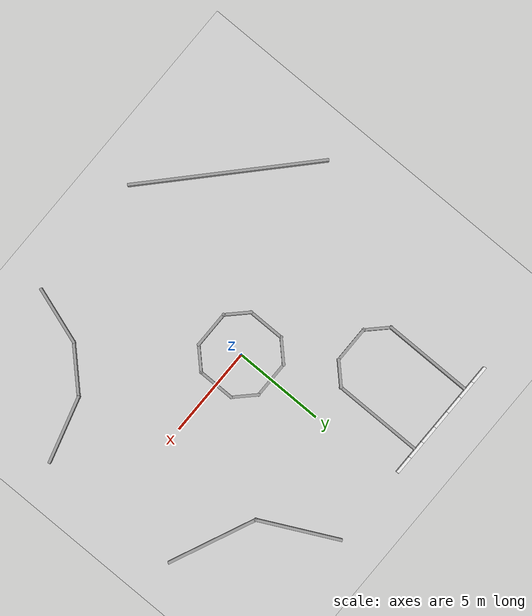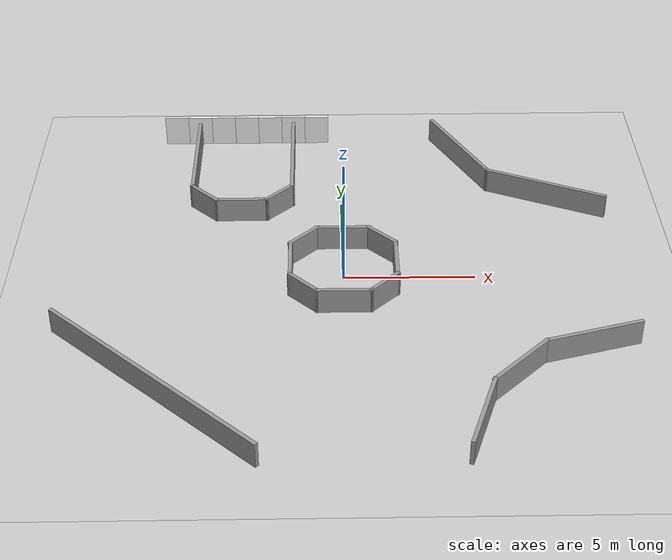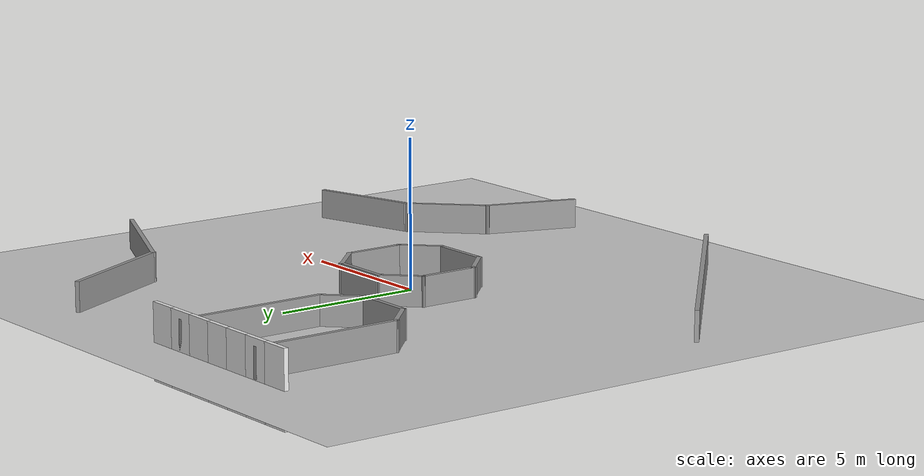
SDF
<sdf version="1.7">
 <world name="default">
  <model name="ground_plane">
   <static>1</static>
   <link name="link">
    <collision name="collision">
     <geometry><plane><normal>0 0 1</normal><size>100 100</size></plane></geometry>
     <surface>
      <contact><collide_bitmask>65535</collide_bitmask></contact>
      <friction><ode><mu>100</mu><mu2>50</mu2></ode></friction>
     </surface>
    </collision>
    <visual name="visual">
     <cast_shadows>0</cast_shadows>
     <geometry><plane><normal>0 0 1</normal><size>100 100</size></plane></geometry>
     <material>
      <script><uri>file://media/materials/scripts/gazebo.material</uri><name>Gazebo/Grey</name></script>
     </material>
    </visual>
   </link>
  </model>
  <model name="wall_left_04">
   <link name="Wall_10">
    <inertial>
     <mass>1</mass>
     <inertia><ixx>1</ixx><ixy>0</ixy><ixz>0</ixz><iyy>1</iyy><iyz>0</iyz><izz>1</izz></inertia>
    </inertial>
    <visual name="Wall_10_Visual_0">
     <geometry><box><size>1 0.15 2.5</size></box></geometry>
     <material>
      <script>
       <uri>model://wall/materials/scripts</uri>
       <uri>model://wall/materials/textures</uri>
       <name>wall_white</name>
      </script>
      <shader type="pixel"><normal_map>__default__</normal_map></shader>
      <ambient>1 1 1 1</ambient>
      <diffuse>1 1 1 1</diffuse>
      <specular>0 0 0 1</specular>
      <emissive>0 0 0 1</emissive>
     </material>
     <meta><layer>0</layer></meta>
    </visual>
    <collision name="Wall_10_Collision_0">
     <geometry><box><size>1 0.15 2.5</size></box></geometry>
     <surface>
      <friction>
       <ode><mu>1</mu><mu2>1</mu2><fdir1>0 0 0</fdir1><slip1>0</slip1><slip2>0</slip2></ode>
       <torsional>
        <coefficient>1</coefficient>
        <patch_radius>0</patch_radius>
        <surface_radius>0</surface_radius>
        <use_patch_radius>1</use_patch_radius>
        <ode><slip>0</slip></ode>
       </torsional>
      </friction>
      <bounce><restitution_coefficient>0</restitution_coefficient><threshold>1e+06</threshold></bounce>
      <contact>
       <collide_without_contact>0</collide_without_contact>
       <collide_without_contact_bitmask>1</collide_without_contact_bitmask>
       <collide_bitmask>1</collide_bitmask>
       <ode>
        <soft_cfm>0</soft_cfm>
        <soft_erp>0.2</soft_erp>
        <kp>1e+13</kp>
        <kd>1</kd>
        <max_vel>0.01</max_vel>
        <min_depth>0</min_depth>
       </ode>
       <bullet>
        <split_impulse>1</split_impulse>
        <split_impulse_penetration_threshold>-0.01</split_impulse_penetration_threshold>
        <soft_cfm>0</soft_cfm>
        <soft_erp>0.2</soft_erp>
        <kp>1e+13</kp>
        <kd>1</kd>
       </bullet>
      </contact>
     </surface>
    </collision>
   </link>
   <static>1</static>
   <pose>-7 10 0 0 -0 0</pose>
  </model>
  <model name="wall_left_05">
   <link name="Wall_10">
    <inertial>
     <mass>1</mass>
     <inertia><ixx>1</ixx><ixy>0</ixy><ixz>0</ixz><iyy>1</iyy><iyz>0</iyz><izz>1</izz></inertia>
    </inertial>
    <visual name="Wall_10_Visual_0">
     <geometry><box><size>1 0.15 2.5</size></box></geometry>
     <material>
      <script>
       <uri>model://wall/materials/scripts</uri>
       <uri>model://wall/materials/textures</uri>
       <name>wall_white</name>
      </script>
      <shader type="pixel"><normal_map>__default__</normal_map></shader>
      <ambient>1 1 1 1</ambient>
      <diffuse>1 1 1 1</diffuse>
      <specular>0 0 0 1</specular>
      <emissive>0 0 0 1</emissive>
     </material>
     <meta><layer>0</layer></meta>
    </visual>
    <collision name="Wall_10_Collision_0">
     <geometry><box><size>1 0.15 2.5</size></box></geometry>
     <surface>
      <friction>
       <ode><mu>1</mu><mu2>1</mu2><fdir1>0 0 0</fdir1><slip1>0</slip1><slip2>0</slip2></ode>
       <torsional>
        <coefficient>1</coefficient>
        <patch_radius>0</patch_radius>
        <surface_radius>0</surface_radius>
        <use_patch_radius>1</use_patch_radius>
        <ode><slip>0</slip></ode>
       </torsional>
      </friction>
      <bounce><restitution_coefficient>0</restitution_coefficient><threshold>1e+06</threshold></bounce>
      <contact>
       <collide_without_contact>0</collide_without_contact>
       <collide_without_contact_bitmask>1</collide_without_contact_bitmask>
       <collide_bitmask>1</collide_bitmask>
       <ode>
        <soft_cfm>0</soft_cfm>
        <soft_erp>0.2</soft_erp>
        <kp>1e+13</kp>
        <kd>1</kd>
        <max_vel>0.01</max_vel>
        <min_depth>0</min_depth>
       </ode>
       <bullet>
        <split_impulse>1</split_impulse>
        <split_impulse_penetration_threshold>-0.01</split_impulse_penetration_threshold>
        <soft_cfm>0</soft_cfm>
        <soft_erp>0.2</soft_erp>
        <kp>1e+13</kp>
        <kd>1</kd>
       </bullet>
      </contact>
     </surface>
    </collision>
   </link>
   <static>1</static>
   <pose>-6 10 0 0 -0 0</pose>
  </model>
  <model name="wall_left_06">
   <link name="Wall_10">
    <inertial>
     <mass>1</mass>
     <inertia><ixx>1</ixx><ixy>0</ixy><ixz>0</ixz><iyy>1</iyy><iyz>0</iyz><izz>1</izz></inertia>
    </inertial>
    <visual name="Wall_10_Visual_0">
     <geometry><box><size>1 0.15 2.5</size></box></geometry>
     <material>
      <script>
       <uri>model://wall/materials/scripts</uri>
       <uri>model://wall/materials/textures</uri>
       <name>wall_white</name>
      </script>
      <shader type="pixel"><normal_map>__default__</normal_map></shader>
      <ambient>1 1 1 1</ambient>
      <diffuse>1 1 1 1</diffuse>
      <specular>0 0 0 1</specular>
      <emissive>0 0 0 1</emissive>
     </material>
     <meta><layer>0</layer></meta>
    </visual>
    <collision name="Wall_10_Collision_0">
     <geometry><box><size>1 0.15 2.5</size></box></geometry>
     <surface>
      <friction>
       <ode><mu>1</mu><mu2>1</mu2><fdir1>0 0 0</fdir1><slip1>0</slip1><slip2>0</slip2></ode>
       <torsional>
        <coefficient>1</coefficient>
        <patch_radius>0</patch_radius>
        <surface_radius>0</surface_radius>
        <use_patch_radius>1</use_patch_radius>
        <ode><slip>0</slip></ode>
       </torsional>
      </friction>
      <bounce><restitution_coefficient>0</restitution_coefficient><threshold>1e+06</threshold></bounce>
      <contact>
       <collide_without_contact>0</collide_without_contact>
       <collide_without_contact_bitmask>1</collide_without_contact_bitmask>
       <collide_bitmask>1</collide_bitmask>
       <ode>
        <soft_cfm>0</soft_cfm>
        <soft_erp>0.2</soft_erp>
        <kp>1e+13</kp>
        <kd>1</kd>
        <max_vel>0.01</max_vel>
        <min_depth>0</min_depth>
       </ode>
       <bullet>
        <split_impulse>1</split_impulse>
        <split_impulse_penetration_threshold>-0.01</split_impulse_penetration_threshold>
        <soft_cfm>0</soft_cfm>
        <soft_erp>0.2</soft_erp>
        <kp>1e+13</kp>
        <kd>1</kd>
       </bullet>
      </contact>
     </surface>
    </collision>
   </link>
   <static>1</static>
   <pose>-5 10 0 0 -0 0</pose>
  </model>
  <model name="wall_left_07">
   <link name="Wall_10">
    <inertial>
     <mass>1</mass>
     <inertia><ixx>1</ixx><ixy>0</ixy><ixz>0</ixz><iyy>1</iyy><iyz>0</iyz><izz>1</izz></inertia>
    </inertial>
    <visual name="Wall_10_Visual_0">
     <geometry><box><size>1 0.15 2.5</size></box></geometry>
     <material>
      <script>
       <uri>model://wall/materials/scripts</uri>
       <uri>model://wall/materials/textures</uri>
       <name>wall_white</name>
      </script>
      <shader type="pixel"><normal_map>__default__</normal_map></shader>
      <ambient>1 1 1 1</ambient>
      <diffuse>1 1 1 1</diffuse>
      <specular>0 0 0 1</specular>
      <emissive>0 0 0 1</emissive>
     </material>
     <meta><layer>0</layer></meta>
    </visual>
    <collision name="Wall_10_Collision_0">
     <geometry><box><size>1 0.15 2.5</size></box></geometry>
     <surface>
      <friction>
       <ode><mu>1</mu><mu2>1</mu2><fdir1>0 0 0</fdir1><slip1>0</slip1><slip2>0</slip2></ode>
       <torsional>
        <coefficient>1</coefficient>
        <patch_radius>0</patch_radius>
        <surface_radius>0</surface_radius>
        <use_patch_radius>1</use_patch_radius>
        <ode><slip>0</slip></ode>
       </torsional>
      </friction>
      <bounce><restitution_coefficient>0</restitution_coefficient><threshold>1e+06</threshold></bounce>
      <contact>
       <collide_without_contact>0</collide_without_contact>
       <collide_without_contact_bitmask>1</collide_without_contact_bitmask>
       <collide_bitmask>1</collide_bitmask>
       <ode>
        <soft_cfm>0</soft_cfm>
        <soft_erp>0.2</soft_erp>
        <kp>1e+13</kp>
        <kd>1</kd>
        <max_vel>0.01</max_vel>
        <min_depth>0</min_depth>
       </ode>
       <bullet>
        <split_impulse>1</split_impulse>
        <split_impulse_penetration_threshold>-0.01</split_impulse_penetration_threshold>
        <soft_cfm>0</soft_cfm>
        <soft_erp>0.2</soft_erp>
        <kp>1e+13</kp>
        <kd>1</kd>
       </bullet>
      </contact>
     </surface>
    </collision>
   </link>
   <static>1</static>
   <pose>-4 10 0 0 -0 0</pose>
  </model>
  <model name="wall_left_08">
   <link name="Wall_10">
    <inertial>
     <mass>1</mass>
     <inertia><ixx>1</ixx><ixy>0</ixy><ixz>0</ixz><iyy>1</iyy><iyz>0</iyz><izz>1</izz></inertia>
    </inertial>
    <visual name="Wall_10_Visual_0">
     <geometry><box><size>1 0.15 2.5</size></box></geometry>
     <material>
      <script>
       <uri>model://wall/materials/scripts</uri>
       <uri>model://wall/materials/textures</uri>
       <name>wall_white</name>
      </script>
      <shader type="pixel"><normal_map>__default__</normal_map></shader>
      <ambient>1 1 1 1</ambient>
      <diffuse>1 1 1 1</diffuse>
      <specular>0 0 0 1</specular>
      <emissive>0 0 0 1</emissive>
     </material>
     <meta><layer>0</layer></meta>
    </visual>
    <collision name="Wall_10_Collision_0">
     <geometry><box><size>1 0.15 2.5</size></box></geometry>
     <surface>
      <friction>
       <ode><mu>1</mu><mu2>1</mu2><fdir1>0 0 0</fdir1><slip1>0</slip1><slip2>0</slip2></ode>
       <torsional>
        <coefficient>1</coefficient>
        <patch_radius>0</patch_radius>
        <surface_radius>0</surface_radius>
        <use_patch_radius>1</use_patch_radius>
        <ode><slip>0</slip></ode>
       </torsional>
      </friction>
      <bounce><restitution_coefficient>0</restitution_coefficient><threshold>1e+06</threshold></bounce>
      <contact>
       <collide_without_contact>0</collide_without_contact>
       <collide_without_contact_bitmask>1</collide_without_contact_bitmask>
       <collide_bitmask>1</collide_bitmask>
       <ode>
        <soft_cfm>0</soft_cfm>
        <soft_erp>0.2</soft_erp>
        <kp>1e+13</kp>
        <kd>1</kd>
        <max_vel>0.01</max_vel>
        <min_depth>0</min_depth>
       </ode>
       <bullet>
        <split_impulse>1</split_impulse>
        <split_impulse_penetration_threshold>-0.01</split_impulse_penetration_threshold>
        <soft_cfm>0</soft_cfm>
        <soft_erp>0.2</soft_erp>
        <kp>1e+13</kp>
        <kd>1</kd>
       </bullet>
      </contact>
     </surface>
    </collision>
   </link>
   <static>1</static>
   <pose>-3 10 0 0 -0 0</pose>
  </model>
  <model name="wall_left_09">
   <link name="Wall_10">
    <inertial>
     <mass>1</mass>
     <inertia><ixx>1</ixx><ixy>0</ixy><ixz>0</ixz><iyy>1</iyy><iyz>0</iyz><izz>1</izz></inertia>
    </inertial>
    <visual name="Wall_10_Visual_0">
     <geometry><box><size>1 0.15 2.5</size></box></geometry>
     <material>
      <script>
       <uri>model://wall/materials/scripts</uri>
       <uri>model://wall/materials/textures</uri>
       <name>wall_white</name>
      </script>
      <shader type="pixel"><normal_map>__default__</normal_map></shader>
      <ambient>1 1 1 1</ambient>
      <diffuse>1 1 1 1</diffuse>
      <specular>0 0 0 1</specular>
      <emissive>0 0 0 1</emissive>
     </material>
     <meta><layer>0</layer></meta>
    </visual>
    <collision name="Wall_10_Collision_0">
     <geometry><box><size>1 0.15 2.5</size></box></geometry>
     <surface>
      <friction>
       <ode><mu>1</mu><mu2>1</mu2><fdir1>0 0 0</fdir1><slip1>0</slip1><slip2>0</slip2></ode>
       <torsional>
        <coefficient>1</coefficient>
        <patch_radius>0</patch_radius>
        <surface_radius>0</surface_radius>
        <use_patch_radius>1</use_patch_radius>
        <ode><slip>0</slip></ode>
       </torsional>
      </friction>
      <bounce><restitution_coefficient>0</restitution_coefficient><threshold>1e+06</threshold></bounce>
      <contact>
       <collide_without_contact>0</collide_without_contact>
       <collide_without_contact_bitmask>1</collide_without_contact_bitmask>
       <collide_bitmask>1</collide_bitmask>
       <ode>
        <soft_cfm>0</soft_cfm>
        <soft_erp>0.2</soft_erp>
        <kp>1e+13</kp>
        <kd>1</kd>
        <max_vel>0.01</max_vel>
        <min_depth>0</min_depth>
       </ode>
       <bullet>
        <split_impulse>1</split_impulse>
        <split_impulse_penetration_threshold>-0.01</split_impulse_penetration_threshold>
        <soft_cfm>0</soft_cfm>
        <soft_erp>0.2</soft_erp>
        <kp>1e+13</kp>
        <kd>1</kd>
       </bullet>
      </contact>
     </surface>
    </collision>
   </link>
   <static>1</static>
   <pose>-2 10 0 0 -0 0</pose>
  </model>
  <model name="wall_left_10">
   <link name="Wall_10">
    <inertial>
     <mass>1</mass>
     <inertia><ixx>1</ixx><ixy>0</ixy><ixz>0</ixz><iyy>1</iyy><iyz>0</iyz><izz>1</izz></inertia>
    </inertial>
    <visual name="Wall_10_Visual_0">
     <geometry><box><size>1 0.15 2.5</size></box></geometry>
     <material>
      <script>
       <uri>model://wall/materials/scripts</uri>
       <uri>model://wall/materials/textures</uri>
       <name>wall_white</name>
      </script>
      <shader type="pixel"><normal_map>__default__</normal_map></shader>
      <ambient>1 1 1 1</ambient>
      <diffuse>1 1 1 1</diffuse>
      <specular>0 0 0 1</specular>
      <emissive>0 0 0 1</emissive>
     </material>
     <meta><layer>0</layer></meta>
    </visual>
    <collision name="Wall_10_Collision_0">
     <geometry><box><size>1 0.15 2.5</size></box></geometry>
     <surface>
      <friction>
       <ode><mu>1</mu><mu2>1</mu2><fdir1>0 0 0</fdir1><slip1>0</slip1><slip2>0</slip2></ode>
       <torsional>
        <coefficient>1</coefficient>
        <patch_radius>0</patch_radius>
        <surface_radius>0</surface_radius>
        <use_patch_radius>1</use_patch_radius>
        <ode><slip>0</slip></ode>
       </torsional>
      </friction>
      <bounce><restitution_coefficient>0</restitution_coefficient><threshold>1e+06</threshold></bounce>
      <contact>
       <collide_without_contact>0</collide_without_contact>
       <collide_without_contact_bitmask>1</collide_without_contact_bitmask>
       <collide_bitmask>1</collide_bitmask>
       <ode>
        <soft_cfm>0</soft_cfm>
        <soft_erp>0.2</soft_erp>
        <kp>1e+13</kp>
        <kd>1</kd>
        <max_vel>0.01</max_vel>
        <min_depth>0</min_depth>
       </ode>
       <bullet>
        <split_impulse>1</split_impulse>
        <split_impulse_penetration_threshold>-0.01</split_impulse_penetration_threshold>
        <soft_cfm>0</soft_cfm>
        <soft_erp>0.2</soft_erp>
        <kp>1e+13</kp>
        <kd>1</kd>
       </bullet>
      </contact>
     </surface>
    </collision>
   </link>
   <static>1</static>
   <pose>-1 10 0 0 -0 0</pose>
  </model>
  <model name="map1">
   <pose>-0.003503 -0.00269 0 0 -0 0</pose>
   <link name="Wall_0">
    <collision name="Wall_0_Collision">
     <geometry><box><size>5.15 0.15 1</size></box></geometry>
     <pose>0 0 0.5 0 -0 0</pose>
    </collision>
    <visual name="Wall_0_Visual">
     <pose>0 0 0.5 0 -0 0</pose>
     <geometry><box><size>5.15 0.15 1</size></box></geometry>
     <material>
      <script><uri>file://media/materials/scripts/gazebo.material</uri><name>Gazebo/Grey</name></script>
      <ambient>1 1 1 1</ambient>
     </material>
     <meta><layer>0</layer></meta>
    </visual>
    <pose>-5.9965 7.50269 0 0 -0 -1.5708</pose>
   </link>
   <link name="Wall_2">
    <collision name="Wall_2_Collision">
     <geometry><box><size>1.56421 0.15 1</size></box></geometry>
     <pose>0 0 0.5 0 -0 0</pose>
    </collision>
    <visual name="Wall_2_Visual">
     <pose>0 0 0.5 0 -0 0</pose>
     <geometry><box><size>1.56421 0.15 1</size></box></geometry>
     <material>
      <script><uri>file://media/materials/scripts/gazebo.material</uri><name>Gazebo/Grey</name></script>
      <ambient>1 1 1 1</ambient>
     </material>
     <meta><layer>0</layer></meta>
    </visual>
    <pose>-5.4965 4.50269 0 0 -0 -0.785398</pose>
   </link>
   <link name="Wall_26">
    <collision name="Wall_26_Collision">
     <geometry><box><size>2.15 0.15 1</size></box></geometry>
     <pose>0 0 0.5 0 -0 0</pose>
    </collision>
    <visual name="Wall_26_Visual">
     <pose>0 0 0.5 0 -0 0</pose>
     <geometry><box><size>2.15 0.15 1</size></box></geometry>
     <material>
      <script><uri>file://media/materials/scripts/gazebo.material</uri><name>Gazebo/Grey</name></script>
      <ambient>1 1 1 1</ambient>
     </material>
     <meta><layer>0</layer></meta>
    </visual>
    <pose>-1.9965 0.00269 0 0 -0 1.5708</pose>
   </link>
   <link name="Wall_27">
    <collision name="Wall_27_Collision">
     <geometry><box><size>1.56421 0.15 1</size></box></geometry>
     <pose>0 0 0.5 0 -0 0</pose>
    </collision>
    <visual name="Wall_27_Visual">
     <pose>0 0 0.5 0 -0 0</pose>
     <geometry><box><size>1.56421 0.15 1</size></box></geometry>
     <material>
      <script><uri>file://media/materials/scripts/gazebo.material</uri><name>Gazebo/Grey</name></script>
      <ambient>1 1 1 1</ambient>
     </material>
     <meta><layer>0</layer></meta>
    </visual>
    <pose>-1.4965 1.50269 0 0 -0 0.785398</pose>
   </link>
   <link name="Wall_28">
    <collision name="Wall_28_Collision">
     <geometry><box><size>2.15 0.15 1</size></box></geometry>
     <pose>0 0 0.5 0 -0 0</pose>
    </collision>
    <visual name="Wall_28_Visual">
     <pose>0 0 0.5 0 -0 0</pose>
     <geometry><box><size>2.15 0.15 1</size></box></geometry>
     <material>
      <script><uri>file://media/materials/scripts/gazebo.material</uri><name>Gazebo/Grey</name></script>
      <ambient>1 1 1 1</ambient>
     </material>
     <meta><layer>0</layer></meta>
    </visual>
    <pose>0.003503 2.00269 0 0 -0 0</pose>
   </link>
   <link name="Wall_29">
    <collision name="Wall_29_Collision">
     <geometry><box><size>1.56421 0.15 1</size></box></geometry>
     <pose>0 0 0.5 0 -0 0</pose>
    </collision>
    <visual name="Wall_29_Visual">
     <pose>0 0 0.5 0 -0 0</pose>
     <geometry><box><size>1.56421 0.15 1</size></box></geometry>
     <material>
      <script><uri>file://media/materials/scripts/gazebo.material</uri><name>Gazebo/Grey</name></script>
      <ambient>1 1 1 1</ambient>
     </material>
     <meta><layer>0</layer></meta>
    </visual>
    <pose>1.5035 1.50269 0 0 -0 -0.785398</pose>
   </link>
   <link name="Wall_3">
    <collision name="Wall_3_Collision">
     <geometry><box><size>2.15 0.15 1</size></box></geometry>
     <pose>0 0 0.5 0 -0 0</pose>
    </collision>
    <visual name="Wall_3_Visual">
     <pose>0 0 0.5 0 -0 0</pose>
     <geometry><box><size>2.15 0.15 1</size></box></geometry>
     <material>
      <script><uri>file://media/materials/scripts/gazebo.material</uri><name>Gazebo/Grey</name></script>
      <ambient>1 1 1 1</ambient>
     </material>
     <meta><layer>0</layer></meta>
    </visual>
    <pose>-3.9965 4.00269 0 0 -0 0</pose>
   </link>
   <link name="Wall_30">
    <collision name="Wall_30_Collision">
     <geometry><box><size>2.15 0.15 1</size></box></geometry>
     <pose>0 0 0.5 0 -0 0</pose>
    </collision>
    <visual name="Wall_30_Visual">
     <pose>0 0 0.5 0 -0 0</pose>
     <geometry><box><size>2.15 0.15 1</size></box></geometry>
     <material>
      <script><uri>file://media/materials/scripts/gazebo.material</uri><name>Gazebo/Grey</name></script>
      <ambient>1 1 1 1</ambient>
     </material>
     <meta><layer>0</layer></meta>
    </visual>
    <pose>2.0035 0.00269 0 0 -0 -1.5708</pose>
   </link>
   <link name="Wall_31">
    <collision name="Wall_31_Collision">
     <geometry><box><size>1.56421 0.15 1</size></box></geometry>
     <pose>0 0 0.5 0 -0 0</pose>
    </collision>
    <visual name="Wall_31_Visual">
     <pose>0 0 0.5 0 -0 0</pose>
     <geometry><box><size>1.56421 0.15 1</size></box></geometry>
     <material>
      <script><uri>file://media/materials/scripts/gazebo.material</uri><name>Gazebo/Grey</name></script>
      <ambient>1 1 1 1</ambient>
     </material>
     <meta><layer>0</layer></meta>
    </visual>
    <pose>1.5035 -1.49731 0 0 -0 -2.35619</pose>
   </link>
   <link name="Wall_32">
    <collision name="Wall_32_Collision">
     <geometry><box><size>2.15 0.15 1</size></box></geometry>
     <pose>0 0 0.5 0 -0 0</pose>
    </collision>
    <visual name="Wall_32_Visual">
     <pose>0 0 0.5 0 -0 0</pose>
     <geometry><box><size>2.15 0.15 1</size></box></geometry>
     <material>
      <script><uri>file://media/materials/scripts/gazebo.material</uri><name>Gazebo/Grey</name></script>
      <ambient>1 1 1 1</ambient>
     </material>
     <meta><layer>0</layer></meta>
    </visual>
    <pose>0.003503 -1.99731 0 0 -0 3.14159</pose>
   </link>
   <link name="Wall_33">
    <collision name="Wall_33_Collision">
     <geometry><box><size>1.56421 0.15 1</size></box></geometry>
     <pose>0 0 0.5 0 -0 0</pose>
    </collision>
    <visual name="Wall_33_Visual">
     <pose>0 0 0.5 0 -0 0</pose>
     <geometry><box><size>1.56421 0.15 1</size></box></geometry>
     <material>
      <script><uri>file://media/materials/scripts/gazebo.material</uri><name>Gazebo/Grey</name></script>
      <ambient>1 1 1 1</ambient>
     </material>
     <meta><layer>0</layer></meta>
    </visual>
    <pose>-1.4965 -1.49731 0 0 -0 2.35619</pose>
   </link>
   <link name="Wall_35">
    <collision name="Wall_35_Collision">
     <geometry><box><size>3.31228 0.15 1</size></box></geometry>
     <pose>0 0 0.5 0 -0 0</pose>
    </collision>
    <visual name="Wall_35_Visual">
     <pose>0 0 0.5 0 -0 0</pose>
     <geometry><box><size>3.31228 0.15 1</size></box></geometry>
     <material>
      <script><uri>file://media/materials/scripts/gazebo.material</uri><name>Gazebo/Grey</name></script>
      <ambient>1 1 1 1</ambient>
     </material>
     <meta><layer>0</layer></meta>
    </visual>
    <pose>4.5035 -8.49731 0 0 -0 1.24905</pose>
   </link>
   <link name="Wall_36">
    <collision name="Wall_36_Collision">
     <geometry><box><size>2.97843 0.15 1</size></box></geometry>
     <pose>0 0 0.5 0 -0 0</pose>
    </collision>
    <visual name="Wall_36_Visual">
     <pose>0 0 0.5 0 -0 0</pose>
     <geometry><box><size>2.97843 0.15 1</size></box></geometry>
     <material>
      <script><uri>file://media/materials/scripts/gazebo.material</uri><name>Gazebo/Grey</name></script>
      <ambient>1 1 1 1</ambient>
     </material>
     <meta><layer>0</layer></meta>
    </visual>
    <pose>6.0035 -5.99731 0 0 -0 0.785398</pose>
   </link>
   <link name="Wall_37">
    <collision name="Wall_37_Collision">
     <geometry><box><size>3.79006 0.15 1</size></box></geometry>
     <pose>0 0 0.5 0 -0 0</pose>
    </collision>
    <visual name="Wall_37_Visual">
     <pose>0 0 0.5 0 -0 0</pose>
     <geometry><box><size>3.79006 0.15 1</size></box></geometry>
     <material>
      <script><uri>file://media/materials/scripts/gazebo.material</uri><name>Gazebo/Grey</name></script>
      <ambient>1 1 1 1</ambient>
     </material>
     <meta><layer>0</layer></meta>
    </visual>
    <pose>8.7535 -4.49731 0 0 -0 0.2783</pose>
   </link>
   <link name="Wall_39">
    <collision name="Wall_39_Collision">
     <geometry><box><size>10.4091 0.15 1</size></box></geometry>
     <pose>0 0 0.5 0 -0 0</pose>
    </collision>
    <visual name="Wall_39_Visual">
     <pose>0 0 0.5 0 -0 0</pose>
     <geometry><box><size>10.4091 0.15 1</size></box></geometry>
     <material>
      <script><uri>file://media/materials/scripts/gazebo.material</uri><name>Gazebo/Grey</name></script>
      <ambient>1 1 1 1</ambient>
     </material>
     <meta><layer>0</layer></meta>
    </visual>
    <pose>-6.7465 -6.49731 0 0 -0 2.39066</pose>
   </link>
   <link name="Wall_4">
    <collision name="Wall_4_Collision">
     <geometry><box><size>1.56421 0.15 1</size></box></geometry>
     <pose>0 0 0.5 0 -0 0</pose>
    </collision>
    <visual name="Wall_4_Visual">
     <pose>0 0 0.5 0 -0 0</pose>
     <geometry><box><size>1.56421 0.15 1</size></box></geometry>
     <material>
      <script><uri>file://media/materials/scripts/gazebo.material</uri><name>Gazebo/Grey</name></script>
      <ambient>1 1 1 1</ambient>
     </material>
     <meta><layer>0</layer></meta>
    </visual>
    <pose>-2.4965 4.50269 0 0 -0 0.785398</pose>
   </link>
   <link name="Wall_57">
    <collision name="Wall_57_Collision">
     <geometry><box><size>4.62214 0.15 1</size></box></geometry>
     <pose>0 0 0.5 0 -0 0</pose>
    </collision>
    <visual name="Wall_57_Visual">
     <pose>0 0 0.5 0 -0 0</pose>
     <geometry><box><size>4.62214 0.15 1</size></box></geometry>
     <material>
      <script><uri>file://media/materials/scripts/gazebo.material</uri><name>Gazebo/Grey</name></script>
      <ambient>1 1 1 1</ambient>
     </material>
     <meta><layer>0</layer></meta>
    </visual>
    <pose>5.0035 8.00269 0 0 -0 -1.10715</pose>
   </link>
   <link name="Wall_58">
    <collision name="Wall_58_Collision">
     <geometry><box><size>5.07443 0.15 1</size></box></geometry>
     <pose>0 0 0.5 0 -0 0</pose>
    </collision>
    <visual name="Wall_58_Visual">
     <pose>0 0 0.5 0 -0 0</pose>
     <geometry><box><size>5.07443 0.15 1</size></box></geometry>
     <material>
      <script><uri>file://media/materials/scripts/gazebo.material</uri><name>Gazebo/Grey</name></script>
      <ambient>1 1 1 1</ambient>
     </material>
     <meta><layer>0</layer></meta>
    </visual>
    <pose>8.2535 5.00269 0 0 -0 -0.418224</pose>
   </link>
   <link name="Wall_6">
    <collision name="Wall_6_Collision">
     <geometry><box><size>5.15 0.15 1</size></box></geometry>
     <pose>0 0 0.5 0 -0 0</pose>
    </collision>
    <visual name="Wall_6_Visual">
     <pose>0 0 0.5 0 -0 0</pose>
     <geometry><box><size>5.15 0.15 1</size></box></geometry>
     <material>
      <script><uri>file://media/materials/scripts/gazebo.material</uri><name>Gazebo/Grey</name></script>
      <ambient>1 1 1 1</ambient>
     </material>
     <meta><layer>0</layer></meta>
    </visual>
    <pose>-1.9965 7.50269 0 0 -0 -1.5708</pose>
   </link>
   <static>1</static>
  </model>
 </world>
</sdf>
